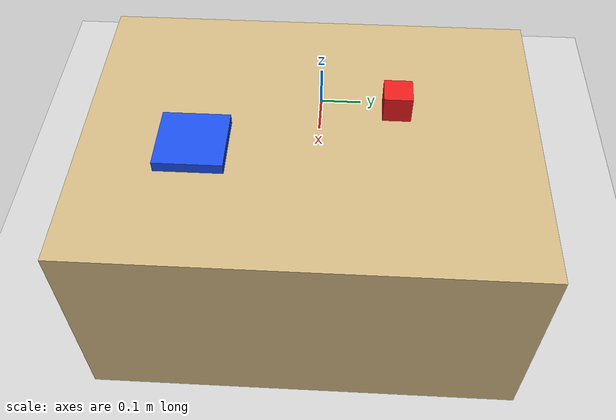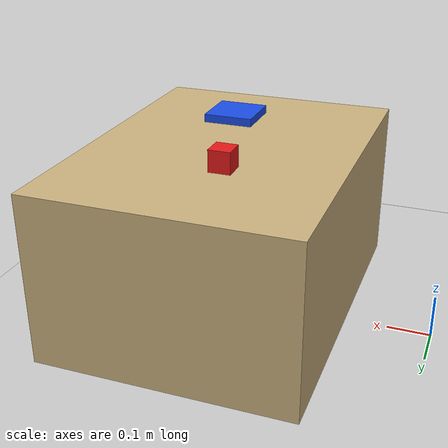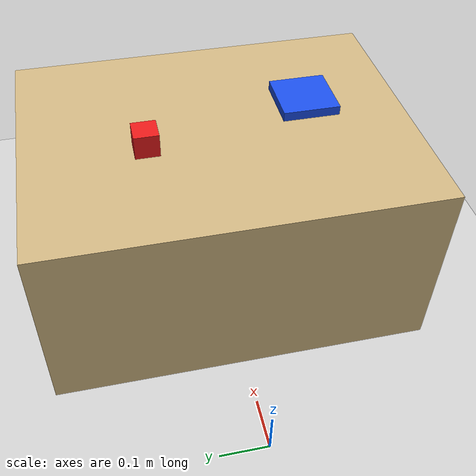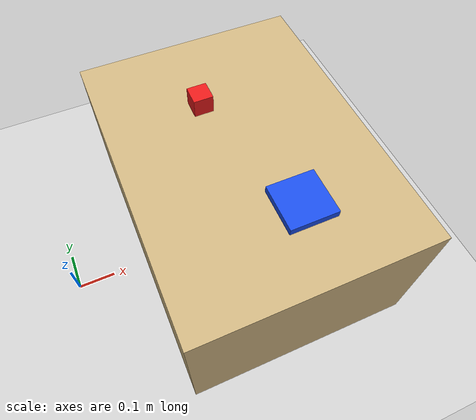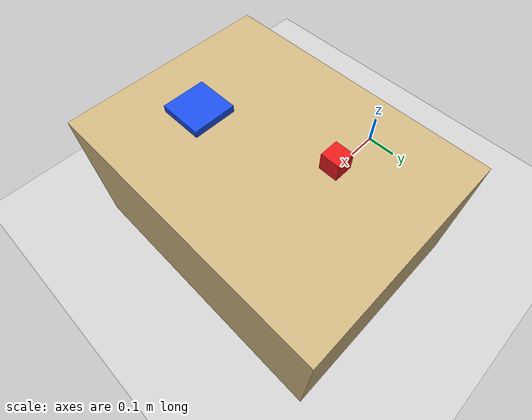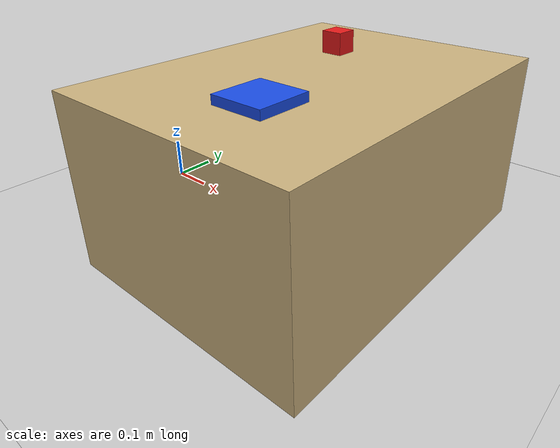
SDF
<?xml version="1.0"?>
<sdf version="1.6">
  <world name="table_world">
    <include><uri>model://sun</uri></include>
    <include><uri>model://ground_plane</uri></include>

    <model name="table"><static>true</static>
      <pose>0.5 0 0.2 0 0 0</pose>
      <link name="l">
        <collision name="c"><geometry><box><size>0.6 0.8 0.4</size></box></geometry></collision>
        <visual name="v"><geometry><box><size>0.6 0.8 0.4</size></box></geometry>
          <material><ambient>0.8 0.7 0.5 1</ambient><diffuse>0.8 0.7 0.5 1</diffuse></material></visual>
      </link>
    </model>

    <model name="red_block">
      <pose>0.45 0.15 0.43 0 0 0</pose>
      <link name="l">
        <inertial><mass>0.05</mass>
          <inertia><ixx>1e-5</ixx><iyy>1e-5</iyy><izz>1e-5</izz><ixy>0</ixy><ixz>0</ixz><iyz>0</iyz></inertia></inertial>
        <collision name="c"><geometry><box><size>0.05 0.05 0.05</size></box></geometry>
          <surface>
            <friction>
              <ode><mu>1.0</mu><mu2>1.0</mu2></ode>
            </friction>
          </surface>
        </collision>
        <visual name="v"><geometry><box><size>0.05 0.05 0.05</size></box></geometry>
          <material><ambient>0.9 0.1 0.1 1</ambient><diffuse>0.9 0.1 0.1 1</diffuse></material></visual>
      </link>
    </model>

    <model name="blue_plate"><static>true</static>
      <pose>0.55 -0.2 0.41 0 0 0</pose>
      <link name="l">
        <visual name="v"><geometry><box><size>0.12 0.12 0.02</size></box></geometry>
          <material><ambient>0.1 0.3 0.9 1</ambient><diffuse>0.1 0.3 0.9 1</diffuse></material></visual>
        <collision name="c"><geometry><box><size>0.12 0.12 0.02</size></box></geometry></collision>
      </link>
    </model>
  </world>
</sdf>
